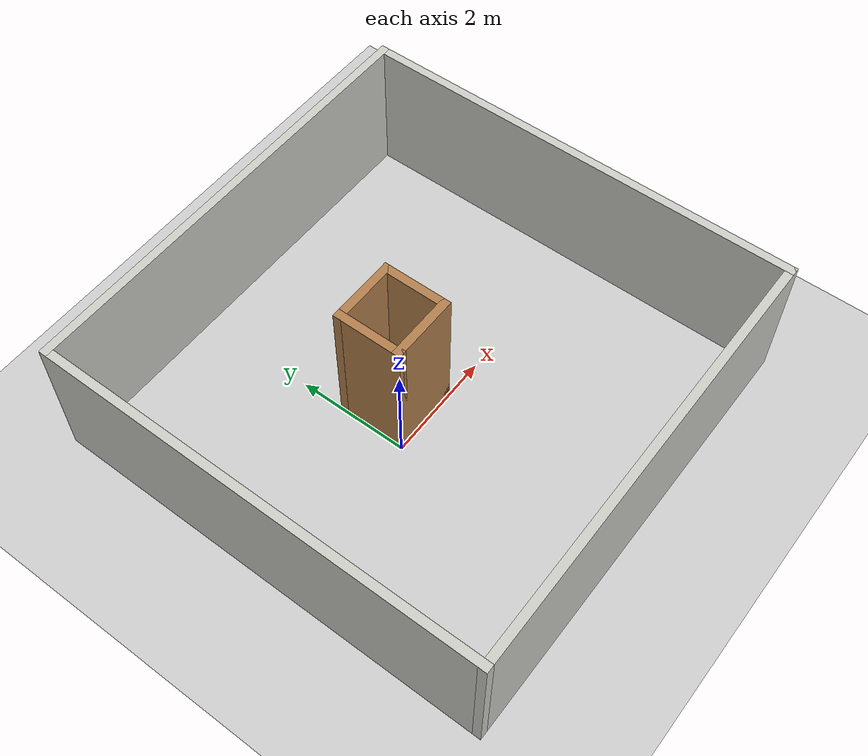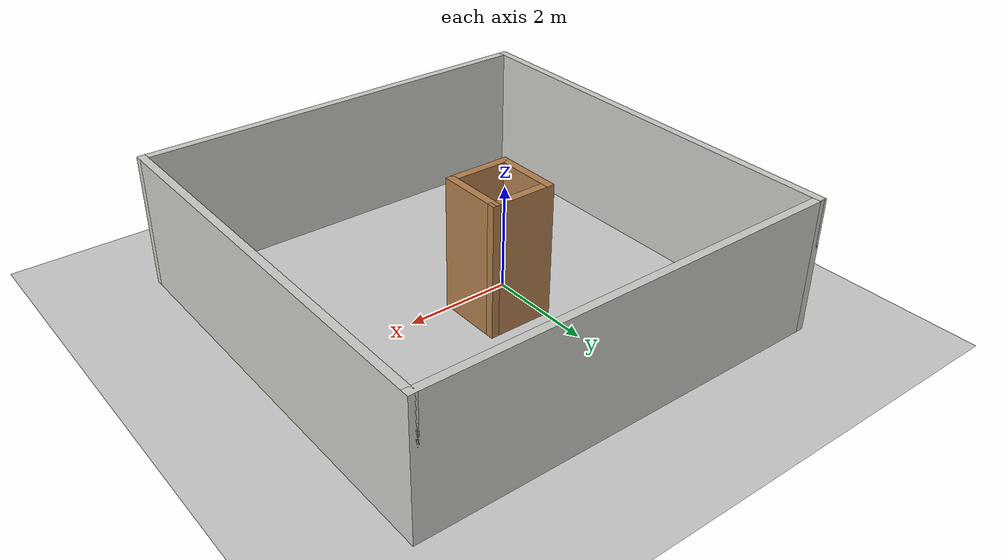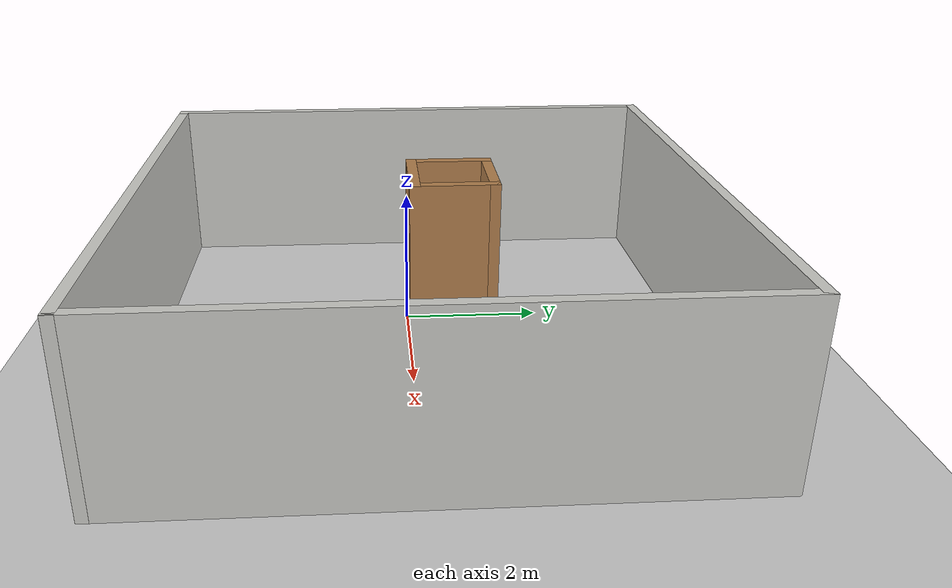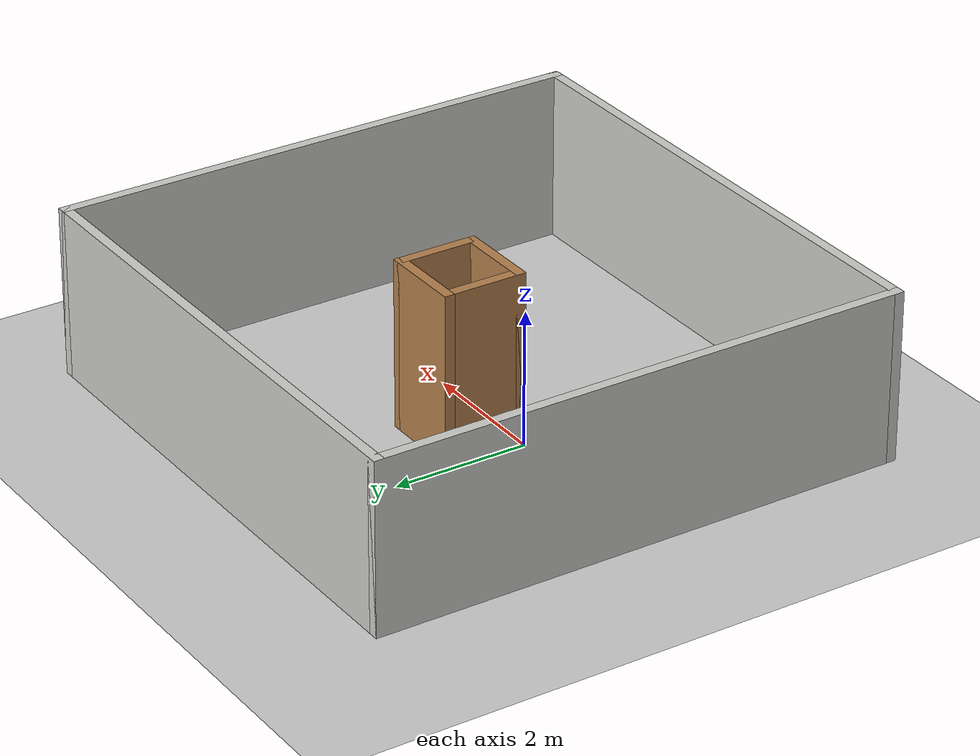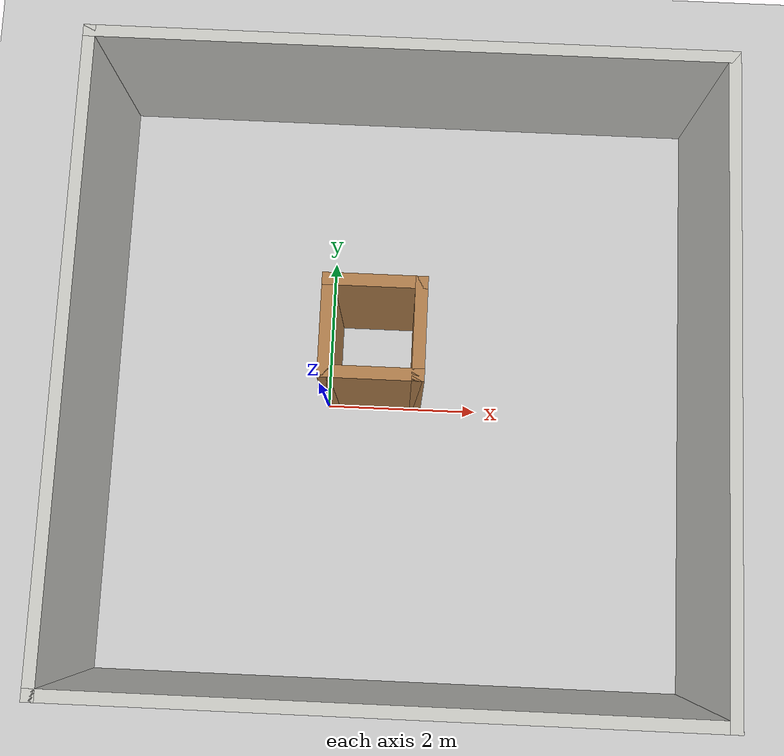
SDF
<sdf version="1.7">
 <world name="default">
  <light name="sun" type="directional">
   <pose>0 0 10 0 -0 0</pose>
   <diffuse>0.8 0.8 0.8 1</diffuse>
   <specular>0.2 0.2 0.2 1</specular>
   <attenuation>
    <range>1000</range>
    <constant>0.9</constant>
    <linear>0.01</linear>
    <quadratic>0.001</quadratic>
   </attenuation>
   <direction>-0.5 0.1 -0.9</direction>
   <spot><inner_angle>0</inner_angle><outer_angle>0</outer_angle><falloff>0</falloff></spot>
  </light>
  <model name="ground_plane">
   <static>1</static>
   <link name="link">
    <collision name="collision">
     <geometry><plane><normal>0 0 1</normal><size>100 100</size></plane></geometry>
     <surface><friction><ode><mu>100</mu><mu2>50</mu2></ode></friction></surface>
    </collision>
    <visual name="visual">
     <cast_shadows>0</cast_shadows>
     <geometry><plane><normal>0 0 1</normal><size>100 100</size></plane></geometry>
     <material>
      <script><uri>file://media/materials/scripts/gazebo.material</uri><name>Gazebo/Grey</name></script>
     </material>
    </visual>
   </link>
  </model>
  <gravity>0 0 -9.8</gravity>
  <magnetic_field>6e-06 2.3e-05 -4.2e-05</magnetic_field>
  <atmosphere type="adiabatic"/>
  <physics type="ode">
   <max_step_size>0.001</max_step_size>
   <real_time_factor>1</real_time_factor>
   <real_time_update_rate>1000</real_time_update_rate>
  </physics>
  <scene><ambient>0.4 0.4 0.4 1</ambient><background>0.7 0.7 0.7 1</background><shadows>1</shadows></scene>
  <spherical_coordinates>
   <surface_model>EARTH_WGS84</surface_model>
   <latitude_deg>0</latitude_deg>
   <longitude_deg>0</longitude_deg>
   <elevation>0</elevation>
   <heading_deg>0</heading_deg>
  </spherical_coordinates>
  <model name="iot3">
   <pose>0.927614 0.205516 0.074777 0 -0 0</pose>
   <link name="Wall_0">
    <collision name="Wall_0_Collision">
     <geometry><box><size>8 0.15 2.5</size></box></geometry>
     <pose>0 0 1.25 0 -0 0</pose>
    </collision>
    <visual name="Wall_0_Visual">
     <pose>0 0 1.25 0 -0 0</pose>
     <geometry><box><size>8 0.15 2.5</size></box></geometry>
     <material>
      <script><uri>file://media/materials/scripts/gazebo.material</uri><name>Gazebo/CeilingTiled</name></script>
      <ambient>1 1 1 1</ambient>
     </material>
     <meta><layer>0</layer></meta>
    </visual>
    <pose>-3.925 0 0 0 -0 1.5708</pose>
   </link>
   <link name="Wall_1">
    <collision name="Wall_1_Collision">
     <geometry><box><size>8 0.15 2.5</size></box></geometry>
     <pose>0 0 1.25 0 -0 0</pose>
    </collision>
    <visual name="Wall_1_Visual">
     <pose>0 0 1.25 0 -0 0</pose>
     <geometry><box><size>8 0.15 2.5</size></box></geometry>
     <material>
      <script><uri>file://media/materials/scripts/gazebo.material</uri><name>Gazebo/CeilingTiled</name></script>
      <ambient>1 1 1 1</ambient>
     </material>
     <meta><layer>0</layer></meta>
    </visual>
    <pose>0 3.925 0 0 -0 0</pose>
   </link>
   <link name="Wall_2">
    <collision name="Wall_2_Collision">
     <geometry><box><size>8 0.15 2.5</size></box></geometry>
     <pose>0 0 1.25 0 -0 0</pose>
    </collision>
    <visual name="Wall_2_Visual">
     <pose>0 0 1.25 0 -0 0</pose>
     <geometry><box><size>8 0.15 2.5</size></box></geometry>
     <material>
      <script><uri>file://media/materials/scripts/gazebo.material</uri><name>Gazebo/CeilingTiled</name></script>
      <ambient>1 1 1 1</ambient>
     </material>
     <meta><layer>0</layer></meta>
    </visual>
    <pose>3.925 0 0 0 -0 -1.5708</pose>
   </link>
   <link name="Wall_3">
    <collision name="Wall_3_Collision">
     <geometry><box><size>8 0.15 2.5</size></box></geometry>
     <pose>0 0 1.25 0 -0 0</pose>
    </collision>
    <visual name="Wall_3_Visual">
     <pose>0 0 1.25 0 -0 0</pose>
     <geometry><box><size>8 0.15 2.5</size></box></geometry>
     <material>
      <script><uri>file://media/materials/scripts/gazebo.material</uri><name>Gazebo/CeilingTiled</name></script>
      <ambient>1 1 1 1</ambient>
     </material>
     <meta><layer>0</layer></meta>
    </visual>
    <pose>0 -3.925 0 0 -0 3.14159</pose>
   </link>
   <link name="Wall_5">
    <collision name="Wall_5_Collision">
     <geometry><box><size>1.25 0.15 2.5</size></box></geometry>
     <pose>0 0 1.25 0 -0 0</pose>
    </collision>
    <visual name="Wall_5_Visual">
     <pose>0 0 1.25 0 -0 0</pose>
     <geometry><box><size>1.25 0.15 2.5</size></box></geometry>
     <material>
      <script><uri>file://media/materials/scripts/gazebo.material</uri><name>Gazebo/Wood</name></script>
      <ambient>1 1 1 1</ambient>
     </material>
     <meta><layer>0</layer></meta>
    </visual>
    <pose>-0.851384 0.408693 0 0 -0 -1.5708</pose>
   </link>
   <link name="Wall_6">
    <collision name="Wall_6_Collision">
     <geometry><box><size>1.25 0.15 2.5</size></box></geometry>
     <pose>0 0 1.25 0 -0 0</pose>
    </collision>
    <visual name="Wall_6_Visual">
     <pose>0 0 1.25 0 -0 0</pose>
     <geometry><box><size>1.25 0.15 2.5</size></box></geometry>
     <material>
      <script><uri>file://media/materials/scripts/gazebo.material</uri><name>Gazebo/Wood</name></script>
      <ambient>1 1 1 1</ambient>
     </material>
     <meta><layer>0</layer></meta>
    </visual>
    <pose>-0.301384 -0.141307 0 0 -0 0</pose>
   </link>
   <link name="Wall_7">
    <collision name="Wall_7_Collision">
     <geometry><box><size>1.25 0.15 2.5</size></box></geometry>
     <pose>0 0 1.25 0 -0 0</pose>
    </collision>
    <visual name="Wall_7_Visual">
     <pose>0 0 1.25 0 -0 0</pose>
     <geometry><box><size>1.25 0.15 2.5</size></box></geometry>
     <material>
      <script><uri>file://media/materials/scripts/gazebo.material</uri><name>Gazebo/Wood</name></script>
      <ambient>1 1 1 1</ambient>
     </material>
     <meta><layer>0</layer></meta>
    </visual>
    <pose>0.248616 0.408693 0 0 -0 1.5708</pose>
   </link>
   <link name="Wall_8">
    <collision name="Wall_8_Collision">
     <geometry><box><size>1.25 0.15 2.5</size></box></geometry>
     <pose>0 0 1.25 0 -0 0</pose>
    </collision>
    <visual name="Wall_8_Visual">
     <pose>0 0 1.25 0 -0 0</pose>
     <geometry><box><size>1.25 0.15 2.5</size></box></geometry>
     <material>
      <script><uri>file://media/materials/scripts/gazebo.material</uri><name>Gazebo/Wood</name></script>
      <ambient>1 1 1 1</ambient>
     </material>
     <meta><layer>0</layer></meta>
    </visual>
    <pose>-0.301384 0.958694 0 0 -0 3.14159</pose>
   </link>
   <static>1</static>
  </model>
 </world>
</sdf>
